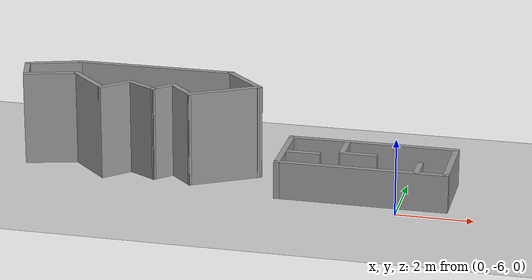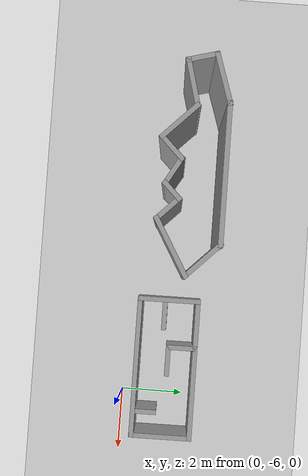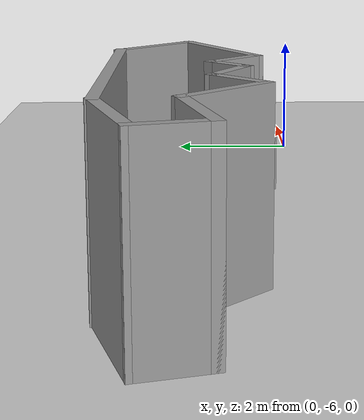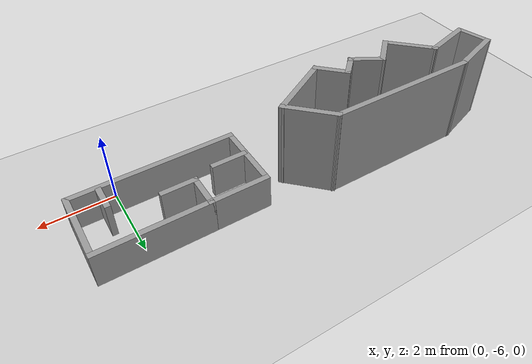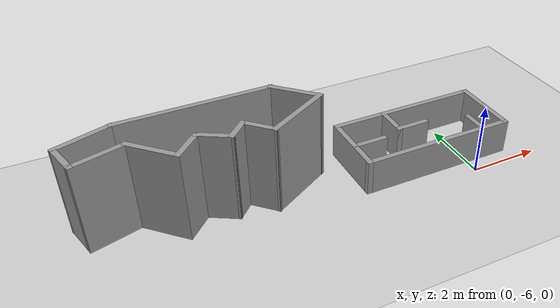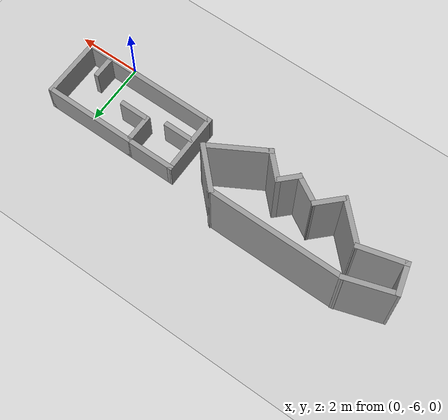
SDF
<sdf version="1.7">
 <world name="default">
  <light name="sun" type="directional">
   <pose>0 0 10 0 -0 0</pose>
   <diffuse>0.8 0.8 0.8 1</diffuse>
   <specular>0.2 0.2 0.2 1</specular>
   <attenuation>
    <range>1000</range>
    <constant>0.9</constant>
    <linear>0.01</linear>
    <quadratic>0.001</quadratic>
   </attenuation>
   <direction>-0.5 0.1 -0.9</direction>
   <spot><inner_angle>0</inner_angle><outer_angle>0</outer_angle><falloff>0</falloff></spot>
  </light>
  <model name="ground_plane">
   <static>1</static>
   <link name="link">
    <collision name="collision">
     <geometry><plane><normal>0 0 1</normal><size>100 100</size></plane></geometry>
     <surface>
      <contact><collide_bitmask>65535</collide_bitmask></contact>
      <friction><ode><mu>100</mu><mu2>50</mu2></ode></friction>
     </surface>
    </collision>
    <visual name="visual">
     <cast_shadows>0</cast_shadows>
     <geometry><plane><normal>0 0 1</normal><size>100 100</size></plane></geometry>
     <material>
      <script><uri>file://media/materials/scripts/gazebo.material</uri><name>Gazebo/Grey</name></script>
     </material>
    </visual>
   </link>
  </model>
  <gravity>0 0 -9.8</gravity>
  <magnetic_field>6e-06 2.3e-05 -4.2e-05</magnetic_field>
  <atmosphere type="adiabatic"/>
  <physics type="ode">
   <max_step_size>0.001</max_step_size>
   <real_time_factor>1</real_time_factor>
   <real_time_update_rate>1000</real_time_update_rate>
  </physics>
  <scene><ambient>0.4 0.4 0.4 1</ambient><background>0.7 0.7 0.7 1</background><shadows>1</shadows></scene>
  <audio><device>default</device></audio>
  <spherical_coordinates>
   <surface_model>EARTH_WGS84</surface_model>
   <latitude_deg>0</latitude_deg>
   <longitude_deg>0</longitude_deg>
   <elevation>0</elevation>
   <heading_deg>0</heading_deg>
  </spherical_coordinates>
  <model name="maailm">
   <pose>-4.59849 -3.45294 0 0 -0 0</pose>
   <link name="Wall_0">
    <collision name="Wall_0_Collision">
     <geometry><box><size>4.25 0.15 2.5</size></box></geometry>
     <pose>0 0 1.25 0 -0 0</pose>
    </collision>
    <visual name="Wall_0_Visual">
     <pose>0 0 1.25 0 -0 0</pose>
     <geometry><box><size>4.25 0.15 2.5</size></box></geometry>
     <material>
      <script><uri>file://media/materials/scripts/gazebo.material</uri><name>Gazebo/Grey</name></script>
      <ambient>1 1 1 1</ambient>
     </material>
     <meta><layer>0</layer></meta>
    </visual>
    <pose>-2.34292 0.204 0 0 -0 0</pose>
   </link>
   <link name="Wall_1">
    <collision name="Wall_1_Collision">
     <geometry><box><size>1.5 0.15 2.5</size></box></geometry>
     <pose>0 0 1.25 0 -0 0</pose>
    </collision>
    <visual name="Wall_1_Visual">
     <pose>0 0 1.25 0 -0 0</pose>
     <geometry><box><size>1.5 0.15 2.5</size></box></geometry>
     <material>
      <script><uri>file://media/materials/scripts/gazebo.material</uri><name>Gazebo/Grey</name></script>
      <ambient>1 1 1 1</ambient>
     </material>
     <meta><layer>0</layer></meta>
    </visual>
    <pose>0.184377 -0.273297 0 0 -0 -0.785398</pose>
   </link>
   <link name="Wall_10">
    <collision name="Wall_10_Collision">
     <geometry><box><size>1.61052 0.15 2.5</size></box></geometry>
     <pose>0 0 1.25 0 -0 0</pose>
    </collision>
    <visual name="Wall_10_Visual">
     <pose>0 0 1.25 0 -0 0</pose>
     <geometry><box><size>1.61052 0.15 2.5</size></box></geometry>
     <material>
      <script><uri>file://media/materials/scripts/gazebo.material</uri><name>Gazebo/Grey</name></script>
      <ambient>1 1 1 1</ambient>
     </material>
     <meta><layer>0</layer></meta>
    </visual>
    <pose>-5.08723 -0.022316 0 0 -0 0.315101</pose>
   </link>
   <link name="Wall_12">
    <collision name="Wall_12_Collision">
     <geometry><box><size>3 0.15 1</size></box></geometry>
     <pose>0 0 0.5 0 -0 0</pose>
    </collision>
    <visual name="Wall_12_Visual">
     <pose>0 0 0.5 0 -0 0</pose>
     <geometry><box><size>3 0.15 1</size></box></geometry>
     <material>
      <script><uri>file://media/materials/scripts/gazebo.material</uri><name>Gazebo/Grey</name></script>
      <ambient>1 1 1 1</ambient>
     </material>
     <meta><layer>0</layer></meta>
    </visual>
    <pose>4.37608 -0.229 0 0 -0 0</pose>
   </link>
   <link name="Wall_13">
    <collision name="Wall_13_Collision">
     <geometry><box><size>2 0.15 1</size></box></geometry>
     <pose>0 0 0.5 0 -0 0</pose>
    </collision>
    <visual name="Wall_13_Visual">
     <pose>0 0 0.5 0 -0 0</pose>
     <geometry><box><size>2 0.15 1</size></box></geometry>
     <material>
      <script><uri>file://media/materials/scripts/gazebo.material</uri><name>Gazebo/Grey</name></script>
      <ambient>1 1 1 1</ambient>
     </material>
     <meta><layer>0</layer></meta>
    </visual>
    <pose>5.80108 -1.154 0 0 -0 -1.5708</pose>
   </link>
   <link name="Wall_14">
    <collision name="Wall_14_Collision">
     <geometry><box><size>4.5 0.15 1</size></box></geometry>
     <pose>0 0 0.5 0 -0 0</pose>
    </collision>
    <visual name="Wall_14_Visual">
     <pose>0 0 0.5 0 -0 0</pose>
     <geometry><box><size>4.5 0.15 1</size></box></geometry>
     <material>
      <script><uri>file://media/materials/scripts/gazebo.material</uri><name>Gazebo/Grey</name></script>
      <ambient>1 1 1 1</ambient>
     </material>
     <meta><layer>0</layer></meta>
    </visual>
    <pose>3.62608 -2.079 0 0 -0 3.14159</pose>
   </link>
   <link name="Wall_15">
    <collision name="Wall_15_Collision">
     <geometry><box><size>2 0.15 1</size></box></geometry>
     <pose>0 0 0.5 0 -0 0</pose>
    </collision>
    <visual name="Wall_15_Visual">
     <pose>0 0 0.5 0 -0 0</pose>
     <geometry><box><size>2 0.15 1</size></box></geometry>
     <material>
      <script><uri>file://media/materials/scripts/gazebo.material</uri><name>Gazebo/Grey</name></script>
      <ambient>1 1 1 1</ambient>
     </material>
     <meta><layer>0</layer></meta>
    </visual>
    <pose>1.45108 -1.154 0 0 -0 1.5708</pose>
   </link>
   <link name="Wall_16">
    <collision name="Wall_16_Collision">
     <geometry><box><size>1.65 0.15 1</size></box></geometry>
     <pose>0 0 0.5 0 -0 0</pose>
    </collision>
    <visual name="Wall_16_Visual">
     <pose>0 0 0.5 0 -0 0</pose>
     <geometry><box><size>1.65 0.15 1</size></box></geometry>
     <material>
      <script><uri>file://media/materials/scripts/gazebo.material</uri><name>Gazebo/Grey</name></script>
      <ambient>1 1 1 1</ambient>
     </material>
     <meta><layer>0</layer></meta>
    </visual>
    <pose>2.20108 -0.229 0 0 -0 0</pose>
   </link>
   <link name="Wall_17">
    <collision name="Wall_17_Collision">
     <geometry><box><size>1 0.15 1</size></box></geometry>
     <pose>0 0 0.5 0 -0 0</pose>
    </collision>
    <visual name="Wall_17_Visual">
     <pose>0 0 0.5 0 -0 0</pose>
     <geometry><box><size>1 0.15 1</size></box></geometry>
     <material>
      <script><uri>file://media/materials/scripts/gazebo.material</uri><name>Gazebo/Grey</name></script>
      <ambient>1 1 1 1</ambient>
     </material>
     <meta><layer>0</layer></meta>
    </visual>
    <pose>2.95108 -0.654 0 0 -0 -1.5708</pose>
   </link>
   <link name="Wall_18">
    <collision name="Wall_18_Collision">
     <geometry><box><size>1 0.15 1</size></box></geometry>
     <pose>0 0 0.5 0 -0 0</pose>
    </collision>
    <visual name="Wall_18_Visual">
     <pose>0 0 0.5 0 -0 0</pose>
     <geometry><box><size>1 0.15 1</size></box></geometry>
     <material>
      <script><uri>file://media/materials/scripts/gazebo.material</uri><name>Gazebo/Grey</name></script>
      <ambient>1 1 1 1</ambient>
     </material>
     <meta><layer>0</layer></meta>
    </visual>
    <pose>3.37608 -1.079 0 0 -0 0</pose>
   </link>
   <link name="Wall_2">
    <collision name="Wall_2_Collision">
     <geometry><box><size>2 0.15 2.5</size></box></geometry>
     <pose>0 0 1.25 0 -0 0</pose>
    </collision>
    <visual name="Wall_2_Visual">
     <pose>0 0 1.25 0 -0 0</pose>
     <geometry><box><size>2 0.15 2.5</size></box></geometry>
     <material>
      <script><uri>file://media/materials/scripts/gazebo.material</uri><name>Gazebo/Grey</name></script>
      <ambient>1 1 1 1</ambient>
     </material>
     <meta><layer>0</layer></meta>
    </visual>
    <pose>-0.139399 -1.21309 0 0 -0 -2.61799</pose>
   </link>
   <link name="Wall_20">
    <collision name="Wall_20_Collision">
     <geometry><box><size>1 0.15 1</size></box></geometry>
     <pose>0 0 0.5 0 -0 0</pose>
    </collision>
    <visual name="Wall_20_Visual">
     <pose>0 0 0.5 0 -0 0</pose>
     <geometry><box><size>1 0.15 1</size></box></geometry>
     <material>
      <script><uri>file://media/materials/scripts/gazebo.material</uri><name>Gazebo/Grey</name></script>
      <ambient>1 1 1 1</ambient>
     </material>
     <meta><layer>0</layer></meta>
    </visual>
    <pose>1.92108 -1.274 0 0 -0 0</pose>
   </link>
   <link name="Wall_22">
    <collision name="Wall_22_Collision">
     <geometry><box><size>0.75 0.15 1</size></box></geometry>
     <pose>0 0 0.5 0 -0 0</pose>
    </collision>
    <visual name="Wall_22_Visual">
     <pose>0 0 0.5 0 -0 0</pose>
     <geometry><box><size>0.75 0.15 1</size></box></geometry>
     <material>
      <script><uri>file://media/materials/scripts/gazebo.material</uri><name>Gazebo/Grey</name></script>
      <ambient>1 1 1 1</ambient>
     </material>
     <meta><layer>0</layer></meta>
    </visual>
    <pose>5.04008 -1.714 0 0 -0 1.5708</pose>
   </link>
   <link name="Wall_3">
    <collision name="Wall_3_Collision">
     <geometry><box><size>1 0.15 2.5</size></box></geometry>
     <pose>0 0 1.25 0 -0 0</pose>
    </collision>
    <visual name="Wall_3_Visual">
     <pose>0 0 1.25 0 -0 0</pose>
     <geometry><box><size>1 0.15 2.5</size></box></geometry>
     <material>
      <script><uri>file://media/materials/scripts/gazebo.material</uri><name>Gazebo/Grey</name></script>
      <ambient>1 1 1 1</ambient>
     </material>
     <meta><layer>0</layer></meta>
    </visual>
    <pose>-1.24099 -1.37507 0 0 -0 2.35619</pose>
   </link>
   <link name="Wall_4">
    <collision name="Wall_4_Collision">
     <geometry><box><size>0.75 0.15 2.5</size></box></geometry>
     <pose>0 0 1.25 0 -0 0</pose>
    </collision>
    <visual name="Wall_4_Visual">
     <pose>0 0 1.25 0 -0 0</pose>
     <geometry><box><size>0.75 0.15 2.5</size></box></geometry>
     <material>
      <script><uri>file://media/materials/scripts/gazebo.material</uri><name>Gazebo/Grey</name></script>
      <ambient>1 1 1 1</ambient>
     </material>
     <meta><layer>0</layer></meta>
    </visual>
    <pose>-1.75364 -1.28669 0 0 -0 -2.35619</pose>
   </link>
   <link name="Wall_5">
    <collision name="Wall_5_Collision">
     <geometry><box><size>1 0.15 2.5</size></box></geometry>
     <pose>0 0 1.25 0 -0 0</pose>
    </collision>
    <visual name="Wall_5_Visual">
     <pose>0 0 1.25 0 -0 0</pose>
     <geometry><box><size>1 0.15 2.5</size></box></geometry>
     <material>
      <script><uri>file://media/materials/scripts/gazebo.material</uri><name>Gazebo/Grey</name></script>
      <ambient>1 1 1 1</ambient>
     </material>
     <meta><layer>0</layer></meta>
    </visual>
    <pose>-2.33384 -1.28632 0 0 -0 2.61799</pose>
   </link>
   <link name="Wall_6">
    <collision name="Wall_6_Collision">
     <geometry><box><size>1 0.15 2.5</size></box></geometry>
     <pose>0 0 1.25 0 -0 0</pose>
    </collision>
    <visual name="Wall_6_Visual">
     <pose>0 0 1.25 0 -0 0</pose>
     <geometry><box><size>1 0.15 2.5</size></box></geometry>
     <material>
      <script><uri>file://media/materials/scripts/gazebo.material</uri><name>Gazebo/Grey</name></script>
      <ambient>1 1 1 1</ambient>
     </material>
     <meta><layer>0</layer></meta>
    </visual>
    <pose>-3.00242 -1.37434 0 0 -0 -2.35619</pose>
   </link>
   <link name="Wall_7">
    <collision name="Wall_7_Collision">
     <geometry><box><size>1.5 0.15 2.5</size></box></geometry>
     <pose>0 0 1.25 0 -0 0</pose>
    </collision>
    <visual name="Wall_7_Visual">
     <pose>0 0 1.25 0 -0 0</pose>
     <geometry><box><size>1.5 0.15 2.5</size></box></geometry>
     <material>
      <script><uri>file://media/materials/scripts/gazebo.material</uri><name>Gazebo/Grey</name></script>
      <ambient>1 1 1 1</ambient>
     </material>
     <meta><layer>0</layer></meta>
    </visual>
    <pose>-3.78024 -1.19756 0 0 -0 2.35619</pose>
   </link>
   <link name="Wall_8">
    <collision name="Wall_8_Collision">
     <geometry><box><size>1.5 0.15 2.5</size></box></geometry>
     <pose>0 0 1.25 0 -0 0</pose>
    </collision>
    <visual name="Wall_8_Visual">
     <pose>0 0 1.25 0 -0 0</pose>
     <geometry><box><size>1.5 0.15 2.5</size></box></geometry>
     <material>
      <script><uri>file://media/materials/scripts/gazebo.material</uri><name>Gazebo/Grey</name></script>
      <ambient>1 1 1 1</ambient>
     </material>
     <meta><layer>0</layer></meta>
    </visual>
    <pose>-4.90953 -0.894967 0 0 -0 -2.87979</pose>
   </link>
   <link name="Wall_9">
    <collision name="Wall_9_Collision">
     <geometry><box><size>1 0.15 2.5</size></box></geometry>
     <pose>0 0 1.25 0 -0 0</pose>
    </collision>
    <visual name="Wall_9_Visual">
     <pose>0 0 1.25 0 -0 0</pose>
     <geometry><box><size>1 0.15 2.5</size></box></geometry>
     <material>
      <script><uri>file://media/materials/scripts/gazebo.material</uri><name>Gazebo/Grey</name></script>
      <ambient>1 1 1 1</ambient>
     </material>
     <meta><layer>0</layer></meta>
    </visual>
    <pose>-5.67153 -0.659151 0 0 -0 1.8326</pose>
   </link>
   <static>1</static>
  </model>
 </world>
</sdf>
